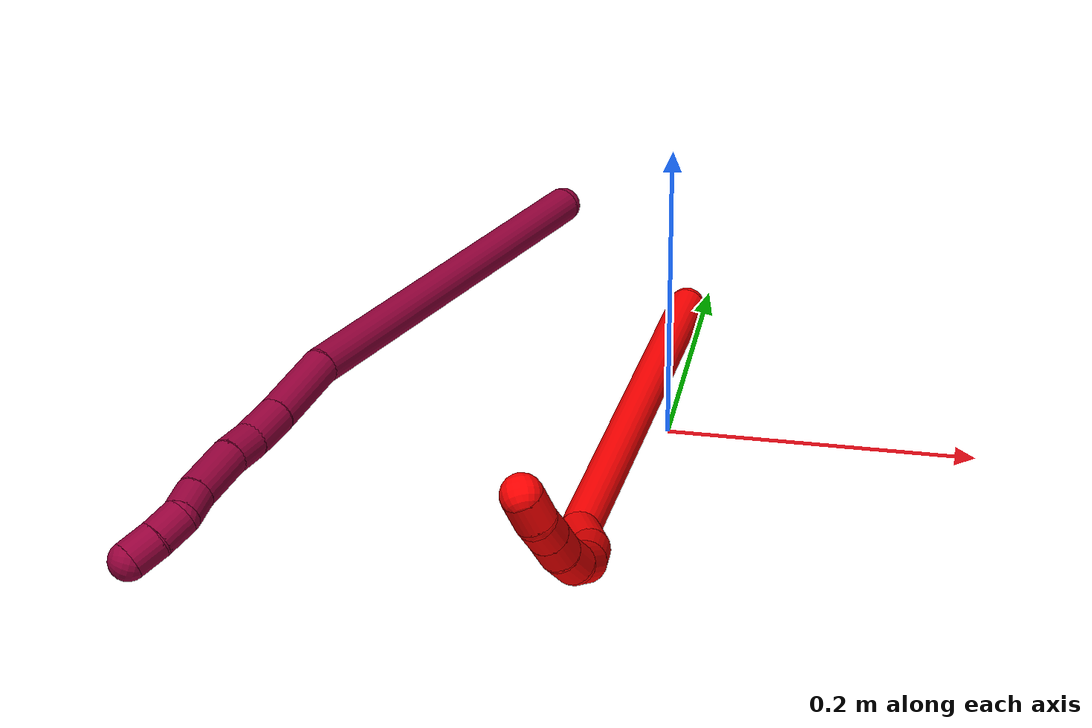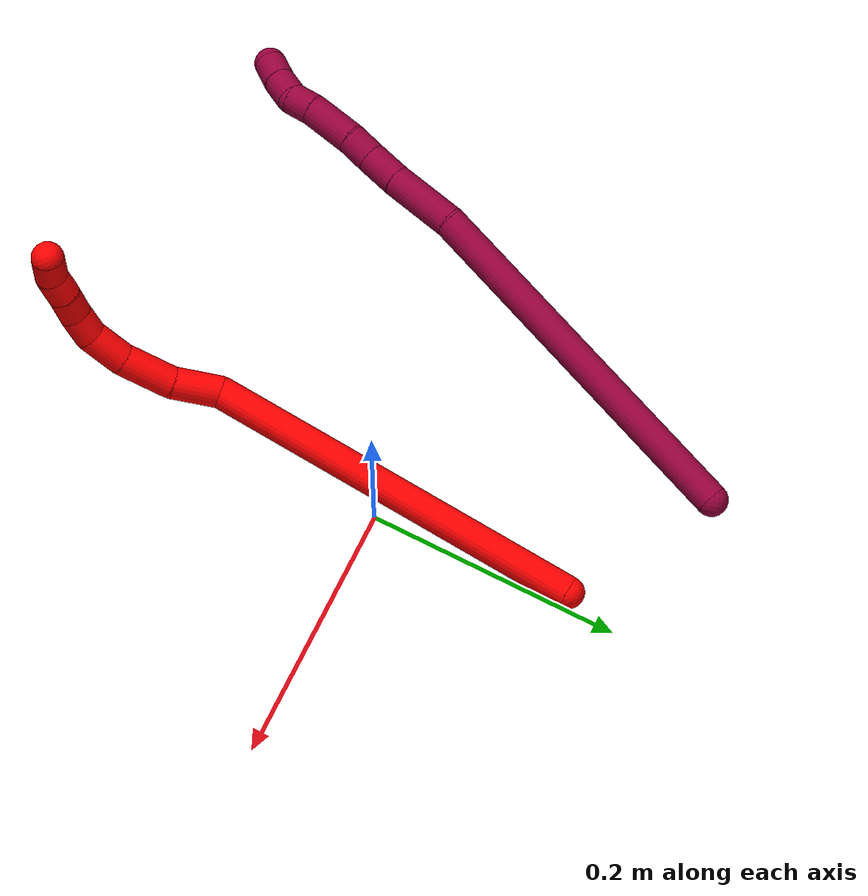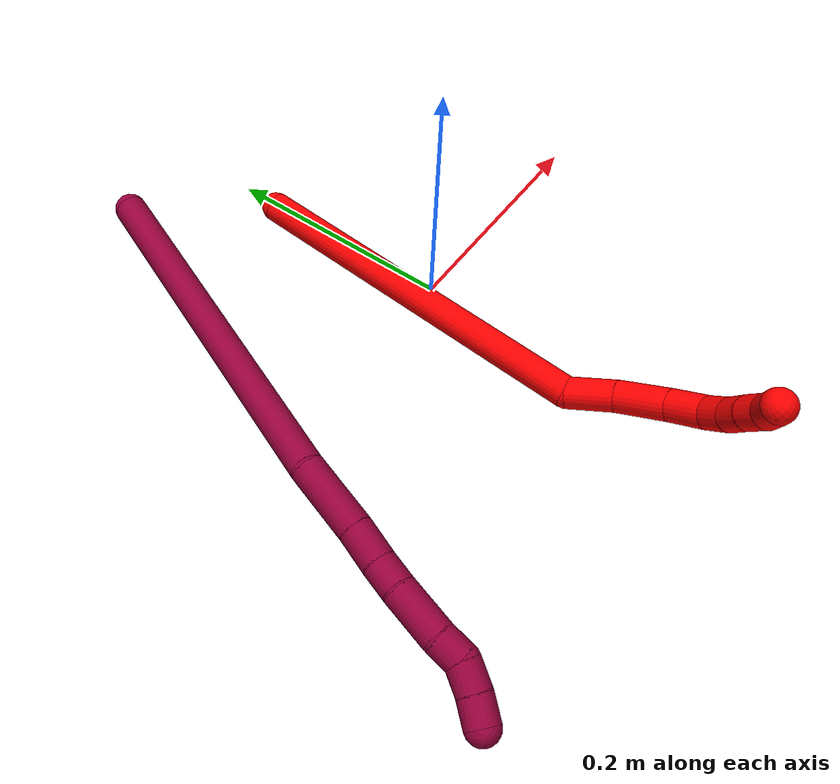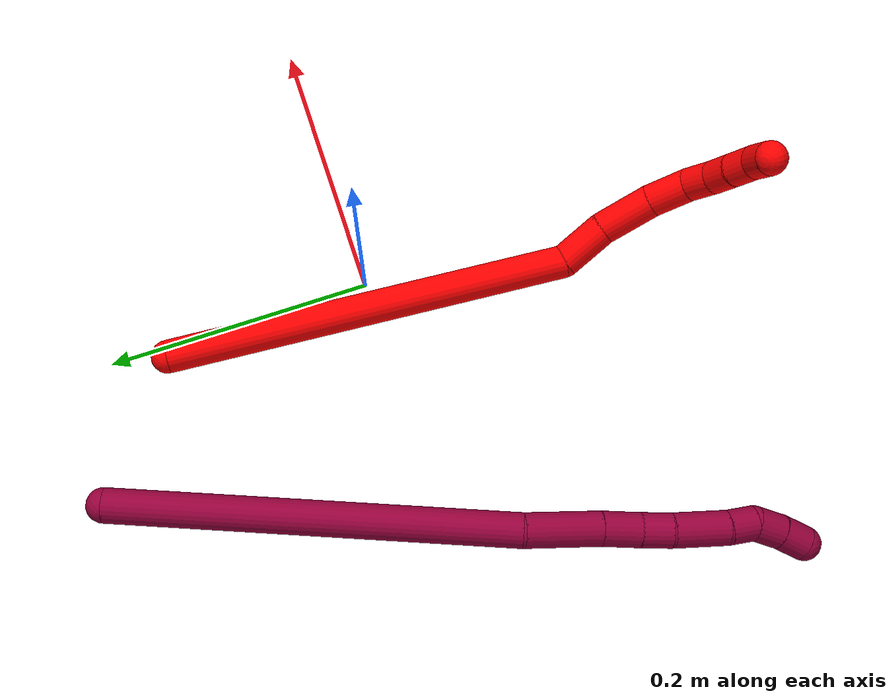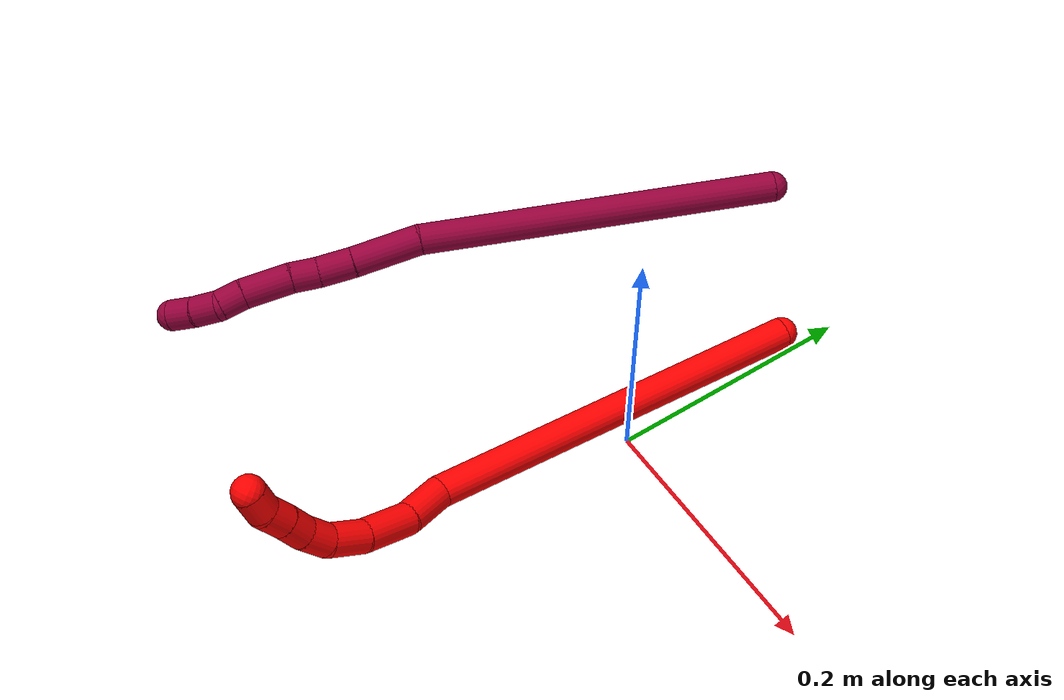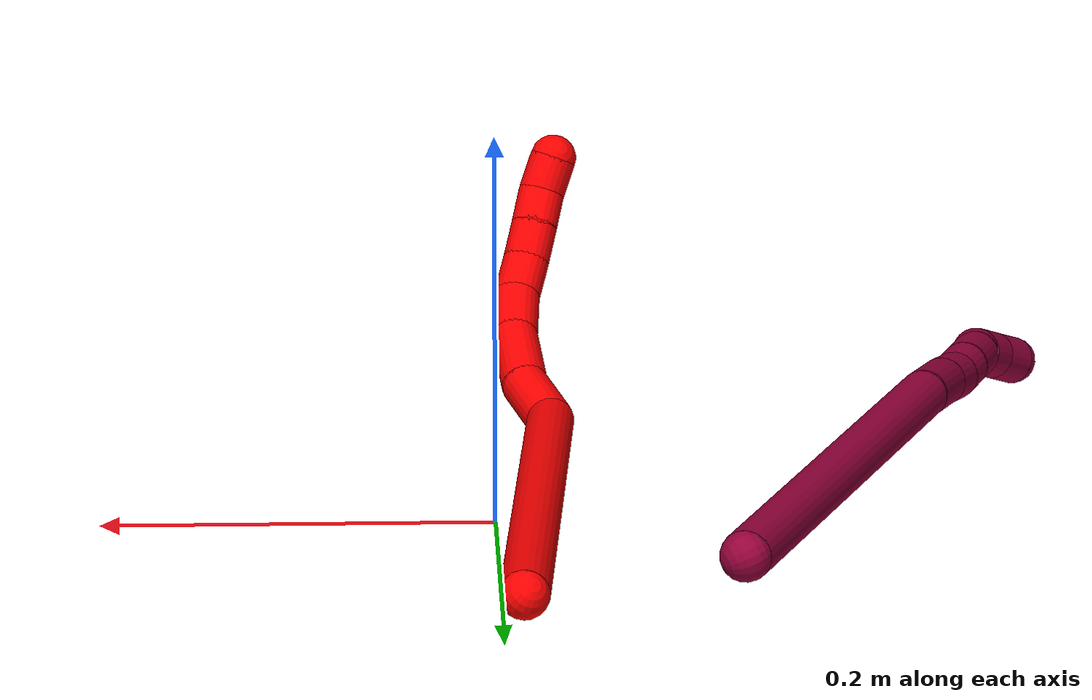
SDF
<sdf version="1.7">
 <world name="default">
  <model name="2">
   <static>0</static>
   <link name="2">
    <collision name="collision-cylinder-e_1_1_4">
     <pose>0.024232 -0.108801 0.104735 0.804436 0.159099 0.067799</pose>
     <geometry><cylinder><radius>0.0125</radius><length>0.305905</length></cylinder></geometry>
     <surface>
      <friction><ode><mu>1.16</mu><mu2>1.16</mu2><slip1>0</slip1><slip2>0</slip2></ode></friction>
      <contact><ode><kp>1e+06</kp><kd>1</kd><max_vel>0</max_vel><min_depth>0.001</min_depth></ode></contact>
     </surface>
    </collision>
    <visual name="visual-cylinder-e_1_1_4">
     <pose>0.024232 -0.108801 0.104735 0.804436 0.159099 0.067799</pose>
     <geometry><cylinder><radius>0.0125</radius><length>0.305905</length></cylinder></geometry>
     <material><ambient>1 0 0 1</ambient></material>
    </visual>
    <collision name="collision-cylinder-e_2_4_5">
     <pose>0.042348 -0.231745 0.220774 0.89653 -0.325789 -0.15775</pose>
     <geometry><cylinder><radius>0.0125</radius><length>0.038219</length></cylinder></geometry>
     <surface>
      <friction><ode><mu>1.16</mu><mu2>1.16</mu2><slip1>0</slip1><slip2>0</slip2></ode></friction>
      <contact><ode><kp>1e+06</kp><kd>1</kd><max_vel>0</max_vel><min_depth>0.001</min_depth></ode></contact>
     </surface>
    </collision>
    <visual name="visual-cylinder-e_2_4_5">
     <pose>0.042348 -0.231745 0.220774 0.89653 -0.325789 -0.15775</pose>
     <geometry><cylinder><radius>0.0125</radius><length>0.038219</length></cylinder></geometry>
     <material><ambient>1 0 0 1</ambient></material>
    </visual>
    <collision name="collision-cylinder-e_3_5_6">
     <pose>0.03287 -0.264409 0.241498 1.10022 -0.160414 -0.098507</pose>
     <geometry><cylinder><radius>0.0125</radius><length>0.042102</length></cylinder></geometry>
     <surface>
      <friction><ode><mu>1.16</mu><mu2>1.16</mu2><slip1>0</slip1><slip2>0</slip2></ode></friction>
      <contact><ode><kp>1e+06</kp><kd>1</kd><max_vel>0</max_vel><min_depth>0.001</min_depth></ode></contact>
     </surface>
    </collision>
    <visual name="visual-cylinder-e_3_5_6">
     <pose>0.03287 -0.264409 0.241498 1.10022 -0.160414 -0.098507</pose>
     <geometry><cylinder><radius>0.0125</radius><length>0.042102</length></cylinder></geometry>
     <material><ambient>1 0 0 1</ambient></material>
    </visual>
    <collision name="collision-cylinder-e_4_6_7">
     <pose>0.028583 -0.29781 0.255263 1.28683 -0.059545 -0.044657</pose>
     <geometry><cylinder><radius>0.0125</radius><length>0.031055</length></cylinder></geometry>
     <surface>
      <friction><ode><mu>1.16</mu><mu2>1.16</mu2><slip1>0</slip1><slip2>0</slip2></ode></friction>
      <contact><ode><kp>1e+06</kp><kd>1</kd><max_vel>0</max_vel><min_depth>0.001</min_depth></ode></contact>
     </surface>
    </collision>
    <visual name="visual-cylinder-e_4_6_7">
     <pose>0.028583 -0.29781 0.255263 1.28683 -0.059545 -0.044657</pose>
     <geometry><cylinder><radius>0.0125</radius><length>0.031055</length></cylinder></geometry>
     <material><ambient>1 0 0 1</ambient></material>
    </visual>
    <collision name="collision-cylinder-e_5_7_8">
     <pose>0.02772 -0.323803 0.258746 1.64798 0.005427 0.005863</pose>
     <geometry><cylinder><radius>0.0125</radius><length>0.022295</length></cylinder></geometry>
     <surface>
      <friction><ode><mu>1.16</mu><mu2>1.16</mu2><slip1>0</slip1><slip2>0</slip2></ode></friction>
      <contact><ode><kp>1e+06</kp><kd>1</kd><max_vel>0</max_vel><min_depth>0.001</min_depth></ode></contact>
     </surface>
    </collision>
    <visual name="visual-cylinder-e_5_7_8">
     <pose>0.02772 -0.323803 0.258746 1.64798 0.005427 0.005863</pose>
     <geometry><cylinder><radius>0.0125</radius><length>0.022295</length></cylinder></geometry>
     <material><ambient>1 0 0 1</ambient></material>
    </visual>
    <collision name="collision-cylinder-e_6_8_9">
     <pose>0.027132 -0.344774 0.255403 1.81755 -0.063695 -0.081711</pose>
     <geometry><cylinder><radius>0.0125</radius><length>0.020371</length></cylinder></geometry>
     <surface>
      <friction><ode><mu>1.16</mu><mu2>1.16</mu2><slip1>0</slip1><slip2>0</slip2></ode></friction>
      <contact><ode><kp>1e+06</kp><kd>1</kd><max_vel>0</max_vel><min_depth>0.001</min_depth></ode></contact>
     </surface>
    </collision>
    <visual name="visual-cylinder-e_6_8_9">
     <pose>0.027132 -0.344774 0.255403 1.81755 -0.063695 -0.081711</pose>
     <geometry><cylinder><radius>0.0125</radius><length>0.020371</length></cylinder></geometry>
     <material><ambient>1 0 0 1</ambient></material>
    </visual>
    <collision name="collision-cylinder-e_7_9_10">
     <pose>0.025874 -0.364462 0.251177 1.74629 -0.060968 -0.07272</pose>
     <geometry><cylinder><radius>0.0125</radius><length>0.020006</length></cylinder></geometry>
     <surface>
      <friction><ode><mu>1.16</mu><mu2>1.16</mu2><slip1>0</slip1><slip2>0</slip2></ode></friction>
      <contact><ode><kp>1e+06</kp><kd>1</kd><max_vel>0</max_vel><min_depth>0.001</min_depth></ode></contact>
     </surface>
    </collision>
    <visual name="visual-cylinder-e_7_9_10">
     <pose>0.025874 -0.364462 0.251177 1.74629 -0.060968 -0.07272</pose>
     <geometry><cylinder><radius>0.0125</radius><length>0.020006</length></cylinder></geometry>
     <material><ambient>1 0 0 1</ambient></material>
    </visual>
    <collision name="collision-cylinder-e_8_10_2">
     <pose>0.025008 -0.382971 0.244423 2.09449 -0.02557 -0.044289</pose>
     <geometry><cylinder><radius>0.0125</radius><length>0.020049</length></cylinder></geometry>
     <surface>
      <friction><ode><mu>1.16</mu><mu2>1.16</mu2><slip1>0</slip1><slip2>0</slip2></ode></friction>
      <contact><ode><kp>1e+06</kp><kd>1</kd><max_vel>0</max_vel><min_depth>0.001</min_depth></ode></contact>
     </surface>
    </collision>
    <visual name="visual-cylinder-e_8_10_2">
     <pose>0.025008 -0.382971 0.244423 2.09449 -0.02557 -0.044289</pose>
     <geometry><cylinder><radius>0.0125</radius><length>0.020049</length></cylinder></geometry>
     <material><ambient>1 0 0 1</ambient></material>
    </visual>
    <collision name="collision-sphere-2">
     <pose>0.024752 -0.391649 0.239411 0 -0 0</pose>
     <geometry><sphere><radius>0.0125</radius></sphere></geometry>
     <surface>
      <friction><ode><mu>1.16</mu><mu2>1.16</mu2><slip1>0</slip1><slip2>0</slip2></ode></friction>
      <contact><ode><kp>1e+06</kp><kd>1</kd><max_vel>0</max_vel><min_depth>0.001</min_depth></ode></contact>
     </surface>
    </collision>
    <visual name="visual-sphere-2">
     <pose>0.024752 -0.391649 0.239411 0 -0 0</pose>
     <geometry><sphere><radius>0.0125</radius></sphere></geometry>
     <material><ambient>1 0 0 1</ambient></material>
    </visual>
    <collision name="collision-sphere-10">
     <pose>0.025264 -0.374293 0.249434 0 -0 0</pose>
     <geometry><sphere><radius>0.0125</radius></sphere></geometry>
     <surface>
      <friction><ode><mu>1.16</mu><mu2>1.16</mu2><slip1>0</slip1><slip2>0</slip2></ode></friction>
      <contact><ode><kp>1e+06</kp><kd>1</kd><max_vel>0</max_vel><min_depth>0.001</min_depth></ode></contact>
     </surface>
    </collision>
    <visual name="visual-sphere-10">
     <pose>0.025264 -0.374293 0.249434 0 -0 0</pose>
     <geometry><sphere><radius>0.0125</radius></sphere></geometry>
     <material><ambient>1 0 0 1</ambient></material>
    </visual>
    <collision name="collision-sphere-9">
     <pose>0.026483 -0.354631 0.252921 0 -0 0</pose>
     <geometry><sphere><radius>0.0125</radius></sphere></geometry>
     <surface>
      <friction><ode><mu>1.16</mu><mu2>1.16</mu2><slip1>0</slip1><slip2>0</slip2></ode></friction>
      <contact><ode><kp>1e+06</kp><kd>1</kd><max_vel>0</max_vel><min_depth>0.001</min_depth></ode></contact>
     </surface>
    </collision>
    <visual name="visual-sphere-9">
     <pose>0.026483 -0.354631 0.252921 0 -0 0</pose>
     <geometry><sphere><radius>0.0125</radius></sphere></geometry>
     <material><ambient>1 0 0 1</ambient></material>
    </visual>
    <collision name="collision-sphere-4">
     <pose>0.048464 -0.217602 0.209471 0 -0 0</pose>
     <geometry><sphere><radius>0.0125</radius></sphere></geometry>
     <surface>
      <friction><ode><mu>1.16</mu><mu2>1.16</mu2><slip1>0</slip1><slip2>0</slip2></ode></friction>
      <contact><ode><kp>1e+06</kp><kd>1</kd><max_vel>0</max_vel><min_depth>0.001</min_depth></ode></contact>
     </surface>
    </collision>
    <visual name="visual-sphere-4">
     <pose>0.048464 -0.217602 0.209471 0 -0 0</pose>
     <geometry><sphere><radius>0.0125</radius></sphere></geometry>
     <material><ambient>1 0 0 1</ambient></material>
    </visual>
    <collision name="collision-sphere-1">
     <geometry><sphere><radius>0.0125</radius></sphere></geometry>
     <surface>
      <friction><ode><mu>1.16</mu><mu2>1.16</mu2><slip1>0</slip1><slip2>0</slip2></ode></friction>
      <contact><ode><kp>1e+06</kp><kd>1</kd><max_vel>0</max_vel><min_depth>0.001</min_depth></ode></contact>
     </surface>
    </collision>
    <visual name="visual-sphere-1">
     <geometry><sphere><radius>0.0125</radius></sphere></geometry>
     <material><ambient>1 0 0 1</ambient></material>
    </visual>
    <collision name="collision-sphere-8">
     <pose>0.02778 -0.334918 0.257886 0 -0 0</pose>
     <geometry><sphere><radius>0.0125</radius></sphere></geometry>
     <surface>
      <friction><ode><mu>1.16</mu><mu2>1.16</mu2><slip1>0</slip1><slip2>0</slip2></ode></friction>
      <contact><ode><kp>1e+06</kp><kd>1</kd><max_vel>0</max_vel><min_depth>0.001</min_depth></ode></contact>
     </surface>
    </collision>
    <visual name="visual-sphere-8">
     <pose>0.02778 -0.334918 0.257886 0 -0 0</pose>
     <geometry><sphere><radius>0.0125</radius></sphere></geometry>
     <material><ambient>1 0 0 1</ambient></material>
    </visual>
    <collision name="collision-sphere-5">
     <pose>0.036232 -0.245887 0.232077 0 -0 0</pose>
     <geometry><sphere><radius>0.0125</radius></sphere></geometry>
     <surface>
      <friction><ode><mu>1.16</mu><mu2>1.16</mu2><slip1>0</slip1><slip2>0</slip2></ode></friction>
      <contact><ode><kp>1e+06</kp><kd>1</kd><max_vel>0</max_vel><min_depth>0.001</min_depth></ode></contact>
     </surface>
    </collision>
    <visual name="visual-sphere-5">
     <pose>0.036232 -0.245887 0.232077 0 -0 0</pose>
     <geometry><sphere><radius>0.0125</radius></sphere></geometry>
     <material><ambient>1 0 0 1</ambient></material>
    </visual>
    <collision name="collision-sphere-6">
     <pose>0.029507 -0.282931 0.25092 0 -0 0</pose>
     <geometry><sphere><radius>0.0125</radius></sphere></geometry>
     <surface>
      <friction><ode><mu>1.16</mu><mu2>1.16</mu2><slip1>0</slip1><slip2>0</slip2></ode></friction>
      <contact><ode><kp>1e+06</kp><kd>1</kd><max_vel>0</max_vel><min_depth>0.001</min_depth></ode></contact>
     </surface>
    </collision>
    <visual name="visual-sphere-6">
     <pose>0.029507 -0.282931 0.25092 0 -0 0</pose>
     <geometry><sphere><radius>0.0125</radius></sphere></geometry>
     <material><ambient>1 0 0 1</ambient></material>
    </visual>
    <collision name="collision-sphere-7">
     <pose>0.027659 -0.312689 0.259605 0 -0 0</pose>
     <geometry><sphere><radius>0.0125</radius></sphere></geometry>
     <surface>
      <friction><ode><mu>1.16</mu><mu2>1.16</mu2><slip1>0</slip1><slip2>0</slip2></ode></friction>
      <contact><ode><kp>1e+06</kp><kd>1</kd><max_vel>0</max_vel><min_depth>0.001</min_depth></ode></contact>
     </surface>
    </collision>
    <visual name="visual-sphere-7">
     <pose>0.027659 -0.312689 0.259605 0 -0 0</pose>
     <geometry><sphere><radius>0.0125</radius></sphere></geometry>
     <material><ambient>1 0 0 1</ambient></material>
    </visual>
    <inertial>
     <pose>0.026985 -0.183464 0.158936 0 -0 0</pose>
     <mass>0.5</mass>
     <inertia>
      <ixx>0.002545</ixx>
      <ixy>0</ixy>
      <ixz>0</ixz>
      <iyy>0.001812</iyy>
      <iyz>0</iyz>
      <izz>0.001369</izz>
     </inertia>
    </inertial>
   </link>
   <pose>-0.010569 0.157301 0.011487 -2.30665 0.396255 -3.0405</pose>
  </model>
  <model name="8">
   <static>0</static>
   <link name="8">
    <collision name="collision-cylinder-e_1_1_4">
     <pose>-0.069419 -0.095249 0.086224 0.835088 -0.495379 -0.223438</pose>
     <geometry><cylinder><radius>0.0125</radius><length>0.292068</length></cylinder></geometry>
     <surface>
      <friction><ode><mu>1.16</mu><mu2>1.16</mu2><slip1>0</slip1><slip2>0</slip2></ode></friction>
      <contact><ode><kp>1e+06</kp><kd>1</kd><max_vel>0</max_vel><min_depth>0.001</min_depth></ode></contact>
     </surface>
    </collision>
    <visual name="visual-cylinder-e_1_1_4">
     <pose>-0.069419 -0.095249 0.086224 0.835088 -0.495379 -0.223438</pose>
     <geometry><cylinder><radius>0.0125</radius><length>0.292068</length></cylinder></geometry>
     <material><ambient>0.584314 0 0.227451 1</ambient></material>
    </visual>
    <collision name="collision-cylinder-e_2_4_5">
     <pose>-0.155323 -0.208776 0.184885 0.973316 -0.64067 -0.347531</pose>
     <geometry><cylinder><radius>0.0125</radius><length>0.055155</length></cylinder></geometry>
     <surface>
      <friction><ode><mu>1.16</mu><mu2>1.16</mu2><slip1>0</slip1><slip2>0</slip2></ode></friction>
      <contact><ode><kp>1e+06</kp><kd>1</kd><max_vel>0</max_vel><min_depth>0.001</min_depth></ode></contact>
     </surface>
    </collision>
    <visual name="visual-cylinder-e_2_4_5">
     <pose>-0.155323 -0.208776 0.184885 0.973316 -0.64067 -0.347531</pose>
     <geometry><cylinder><radius>0.0125</radius><length>0.055155</length></cylinder></geometry>
     <material><ambient>0.584314 0 0.227451 1</ambient></material>
    </visual>
    <collision name="collision-cylinder-e_3_5_6">
     <pose>-0.180372 -0.235968 0.204479 0.894284 -0.643064 -0.316781</pose>
     <geometry><cylinder><radius>0.0125</radius><length>0.028567</length></cylinder></geometry>
     <surface>
      <friction><ode><mu>1.16</mu><mu2>1.16</mu2><slip1>0</slip1><slip2>0</slip2></ode></friction>
      <contact><ode><kp>1e+06</kp><kd>1</kd><max_vel>0</max_vel><min_depth>0.001</min_depth></ode></contact>
     </surface>
    </collision>
    <visual name="visual-cylinder-e_3_5_6">
     <pose>-0.180372 -0.235968 0.204479 0.894284 -0.643064 -0.316781</pose>
     <geometry><cylinder><radius>0.0125</radius><length>0.028567</length></cylinder></geometry>
     <material><ambient>0.584314 0 0.227451 1</ambient></material>
    </visual>
    <collision name="collision-cylinder-e_4_6_7">
     <pose>-0.194439 -0.252462 0.217716 0.894806 -0.515172 -0.251491</pose>
     <geometry><cylinder><radius>0.0125</radius><length>0.022335</length></cylinder></geometry>
     <surface>
      <friction><ode><mu>1.16</mu><mu2>1.16</mu2><slip1>0</slip1><slip2>0</slip2></ode></friction>
      <contact><ode><kp>1e+06</kp><kd>1</kd><max_vel>0</max_vel><min_depth>0.001</min_depth></ode></contact>
     </surface>
    </collision>
    <visual name="visual-cylinder-e_4_6_7">
     <pose>-0.194439 -0.252462 0.217716 0.894806 -0.515172 -0.251491</pose>
     <geometry><cylinder><radius>0.0125</radius><length>0.022335</length></cylinder></geometry>
     <material><ambient>0.584314 0 0.227451 1</ambient></material>
    </visual>
    <collision name="collision-cylinder-e_5_7_8">
     <pose>-0.211213 -0.273664 0.232682 0.992753 -0.606064 -0.335497</pose>
     <geometry><cylinder><radius>0.0125</radius><length>0.039574</length></cylinder></geometry>
     <surface>
      <friction><ode><mu>1.16</mu><mu2>1.16</mu2><slip1>0</slip1><slip2>0</slip2></ode></friction>
      <contact><ode><kp>1e+06</kp><kd>1</kd><max_vel>0</max_vel><min_depth>0.001</min_depth></ode></contact>
     </surface>
    </collision>
    <visual name="visual-cylinder-e_5_7_8">
     <pose>-0.211213 -0.273664 0.232682 0.992753 -0.606064 -0.335497</pose>
     <geometry><cylinder><radius>0.0125</radius><length>0.039574</length></cylinder></geometry>
     <material><ambient>0.584314 0 0.227451 1</ambient></material>
    </visual>
    <collision name="collision-cylinder-e_6_8_9">
     <pose>-0.228652 -0.294671 0.244785 1.16009 -0.653364 -0.436927</pose>
     <geometry><cylinder><radius>0.0125</radius><length>0.020292</length></cylinder></geometry>
     <surface>
      <friction><ode><mu>1.16</mu><mu2>1.16</mu2><slip1>0</slip1><slip2>0</slip2></ode></friction>
      <contact><ode><kp>1e+06</kp><kd>1</kd><max_vel>0</max_vel><min_depth>0.001</min_depth></ode></contact>
     </surface>
    </collision>
    <visual name="visual-cylinder-e_6_8_9">
     <pose>-0.228652 -0.294671 0.244785 1.16009 -0.653364 -0.436927</pose>
     <geometry><cylinder><radius>0.0125</radius><length>0.020292</length></cylinder></geometry>
     <material><ambient>0.584314 0 0.227451 1</ambient></material>
    </visual>
    <collision name="collision-cylinder-e_7_9_10">
     <pose>-0.242687 -0.305999 0.253953 0.584969 -0.833988 -0.26521</pose>
     <geometry><cylinder><radius>0.0125</radius><length>0.021248</length></cylinder></geometry>
     <surface>
      <friction><ode><mu>1.16</mu><mu2>1.16</mu2><slip1>0</slip1><slip2>0</slip2></ode></friction>
      <contact><ode><kp>1e+06</kp><kd>1</kd><max_vel>0</max_vel><min_depth>0.001</min_depth></ode></contact>
     </surface>
    </collision>
    <visual name="visual-cylinder-e_7_9_10">
     <pose>-0.242687 -0.305999 0.253953 0.584969 -0.833988 -0.26521</pose>
     <geometry><cylinder><radius>0.0125</radius><length>0.021248</length></cylinder></geometry>
     <material><ambient>0.584314 0 0.227451 1</ambient></material>
    </visual>
    <collision name="collision-cylinder-e_8_10_2">
     <pose>-0.258157 -0.312712 0.266407 0.402895 -0.821706 -0.177466</pose>
     <geometry><cylinder><radius>0.0125</radius><length>0.020761</length></cylinder></geometry>
     <surface>
      <friction><ode><mu>1.16</mu><mu2>1.16</mu2><slip1>0</slip1><slip2>0</slip2></ode></friction>
      <contact><ode><kp>1e+06</kp><kd>1</kd><max_vel>0</max_vel><min_depth>0.001</min_depth></ode></contact>
     </surface>
    </collision>
    <visual name="visual-cylinder-e_8_10_2">
     <pose>-0.258157 -0.312712 0.266407 0.402895 -0.821706 -0.177466</pose>
     <geometry><cylinder><radius>0.0125</radius><length>0.020761</length></cylinder></geometry>
     <material><ambient>0.584314 0 0.227451 1</ambient></material>
    </visual>
    <collision name="collision-sphere-2">
     <pose>-0.265759 -0.315484 0.27291 0 -0 0</pose>
     <geometry><sphere><radius>0.0125</radius></sphere></geometry>
     <surface>
      <friction><ode><mu>1.16</mu><mu2>1.16</mu2><slip1>0</slip1><slip2>0</slip2></ode></friction>
      <contact><ode><kp>1e+06</kp><kd>1</kd><max_vel>0</max_vel><min_depth>0.001</min_depth></ode></contact>
     </surface>
    </collision>
    <visual name="visual-sphere-2">
     <pose>-0.265759 -0.315484 0.27291 0 -0 0</pose>
     <geometry><sphere><radius>0.0125</radius></sphere></geometry>
     <material><ambient>0.584314 0 0.227451 1</ambient></material>
    </visual>
    <collision name="collision-sphere-10">
     <pose>-0.250555 -0.309941 0.259904 0 -0 0</pose>
     <geometry><sphere><radius>0.0125</radius></sphere></geometry>
     <surface>
      <friction><ode><mu>1.16</mu><mu2>1.16</mu2><slip1>0</slip1><slip2>0</slip2></ode></friction>
      <contact><ode><kp>1e+06</kp><kd>1</kd><max_vel>0</max_vel><min_depth>0.001</min_depth></ode></contact>
     </surface>
    </collision>
    <visual name="visual-sphere-10">
     <pose>-0.250555 -0.309941 0.259904 0 -0 0</pose>
     <geometry><sphere><radius>0.0125</radius></sphere></geometry>
     <material><ambient>0.584314 0 0.227451 1</ambient></material>
    </visual>
    <collision name="collision-sphere-9">
     <pose>-0.234819 -0.302057 0.248001 0 -0 0</pose>
     <geometry><sphere><radius>0.0125</radius></sphere></geometry>
     <surface>
      <friction><ode><mu>1.16</mu><mu2>1.16</mu2><slip1>0</slip1><slip2>0</slip2></ode></friction>
      <contact><ode><kp>1e+06</kp><kd>1</kd><max_vel>0</max_vel><min_depth>0.001</min_depth></ode></contact>
     </surface>
    </collision>
    <visual name="visual-sphere-9">
     <pose>-0.234819 -0.302057 0.248001 0 -0 0</pose>
     <geometry><sphere><radius>0.0125</radius></sphere></geometry>
     <material><ambient>0.584314 0 0.227451 1</ambient></material>
    </visual>
    <collision name="collision-sphere-4">
     <pose>-0.138839 -0.190497 0.172448 0 -0 0</pose>
     <geometry><sphere><radius>0.0125</radius></sphere></geometry>
     <surface>
      <friction><ode><mu>1.16</mu><mu2>1.16</mu2><slip1>0</slip1><slip2>0</slip2></ode></friction>
      <contact><ode><kp>1e+06</kp><kd>1</kd><max_vel>0</max_vel><min_depth>0.001</min_depth></ode></contact>
     </surface>
    </collision>
    <visual name="visual-sphere-4">
     <pose>-0.138839 -0.190497 0.172448 0 -0 0</pose>
     <geometry><sphere><radius>0.0125</radius></sphere></geometry>
     <material><ambient>0.584314 0 0.227451 1</ambient></material>
    </visual>
    <collision name="collision-sphere-1">
     <geometry><sphere><radius>0.0125</radius></sphere></geometry>
     <surface>
      <friction><ode><mu>1.16</mu><mu2>1.16</mu2><slip1>0</slip1><slip2>0</slip2></ode></friction>
      <contact><ode><kp>1e+06</kp><kd>1</kd><max_vel>0</max_vel><min_depth>0.001</min_depth></ode></contact>
     </surface>
    </collision>
    <visual name="visual-sphere-1">
     <geometry><sphere><radius>0.0125</radius></sphere></geometry>
     <material><ambient>0.584314 0 0.227451 1</ambient></material>
    </visual>
    <collision name="collision-sphere-8">
     <pose>-0.222484 -0.287284 0.241568 0 -0 0</pose>
     <geometry><sphere><radius>0.0125</radius></sphere></geometry>
     <surface>
      <friction><ode><mu>1.16</mu><mu2>1.16</mu2><slip1>0</slip1><slip2>0</slip2></ode></friction>
      <contact><ode><kp>1e+06</kp><kd>1</kd><max_vel>0</max_vel><min_depth>0.001</min_depth></ode></contact>
     </surface>
    </collision>
    <visual name="visual-sphere-8">
     <pose>-0.222484 -0.287284 0.241568 0 -0 0</pose>
     <geometry><sphere><radius>0.0125</radius></sphere></geometry>
     <material><ambient>0.584314 0 0.227451 1</ambient></material>
    </visual>
    <collision name="collision-sphere-5">
     <pose>-0.171807 -0.227054 0.197323 0 -0 0</pose>
     <geometry><sphere><radius>0.0125</radius></sphere></geometry>
     <surface>
      <friction><ode><mu>1.16</mu><mu2>1.16</mu2><slip1>0</slip1><slip2>0</slip2></ode></friction>
      <contact><ode><kp>1e+06</kp><kd>1</kd><max_vel>0</max_vel><min_depth>0.001</min_depth></ode></contact>
     </surface>
    </collision>
    <visual name="visual-sphere-5">
     <pose>-0.171807 -0.227054 0.197323 0 -0 0</pose>
     <geometry><sphere><radius>0.0125</radius></sphere></geometry>
     <material><ambient>0.584314 0 0.227451 1</ambient></material>
    </visual>
    <collision name="collision-sphere-6">
     <pose>-0.188937 -0.244881 0.211636 0 -0 0</pose>
     <geometry><sphere><radius>0.0125</radius></sphere></geometry>
     <surface>
      <friction><ode><mu>1.16</mu><mu2>1.16</mu2><slip1>0</slip1><slip2>0</slip2></ode></friction>
      <contact><ode><kp>1e+06</kp><kd>1</kd><max_vel>0</max_vel><min_depth>0.001</min_depth></ode></contact>
     </surface>
    </collision>
    <visual name="visual-sphere-6">
     <pose>-0.188937 -0.244881 0.211636 0 -0 0</pose>
     <geometry><sphere><radius>0.0125</radius></sphere></geometry>
     <material><ambient>0.584314 0 0.227451 1</ambient></material>
    </visual>
    <collision name="collision-sphere-7">
     <pose>-0.199941 -0.260043 0.223796 0 -0 0</pose>
     <geometry><sphere><radius>0.0125</radius></sphere></geometry>
     <surface>
      <friction><ode><mu>1.16</mu><mu2>1.16</mu2><slip1>0</slip1><slip2>0</slip2></ode></friction>
      <contact><ode><kp>1e+06</kp><kd>1</kd><max_vel>0</max_vel><min_depth>0.001</min_depth></ode></contact>
     </surface>
    </collision>
    <visual name="visual-sphere-7">
     <pose>-0.199941 -0.260043 0.223796 0 -0 0</pose>
     <geometry><sphere><radius>0.0125</radius></sphere></geometry>
     <material><ambient>0.584314 0 0.227451 1</ambient></material>
    </visual>
    <inertial>
     <pose>-0.123704 -0.163034 0.142374 0 -0 0</pose>
     <mass>0.5</mass>
     <inertia>
      <ixx>0.001379</ixx>
      <ixy>0</ixy>
      <ixz>0</ixz>
      <iyy>0.001112</iyy>
      <iyz>0</iyz>
      <izz>0.002415</izz>
     </inertia>
    </inertial>
   </link>
   <pose>-0.112326 0.224219 0.050508 -0.781444 -1.06776 1.14362</pose>
  </model>
 </world>
</sdf>
